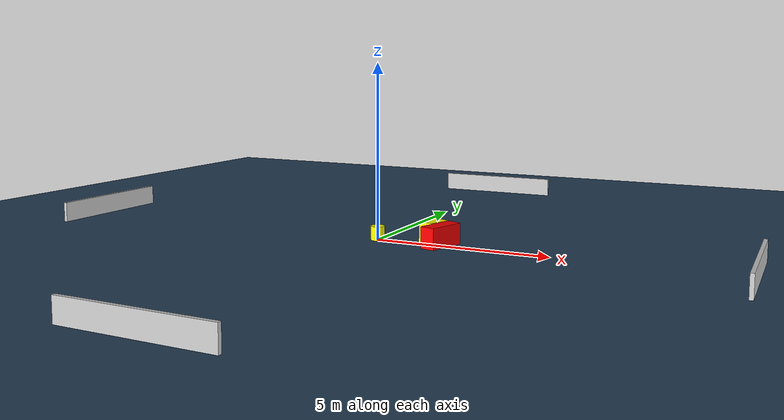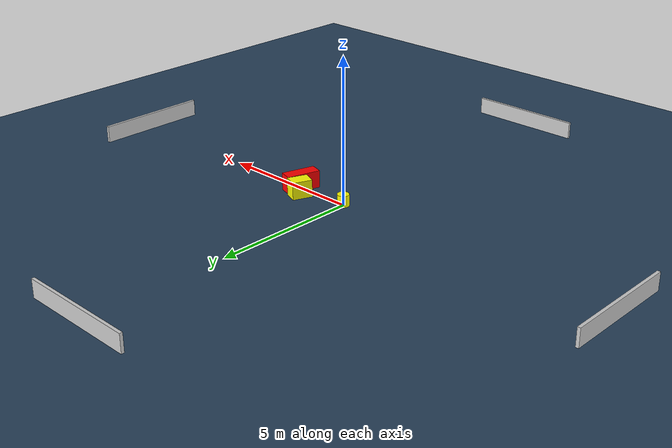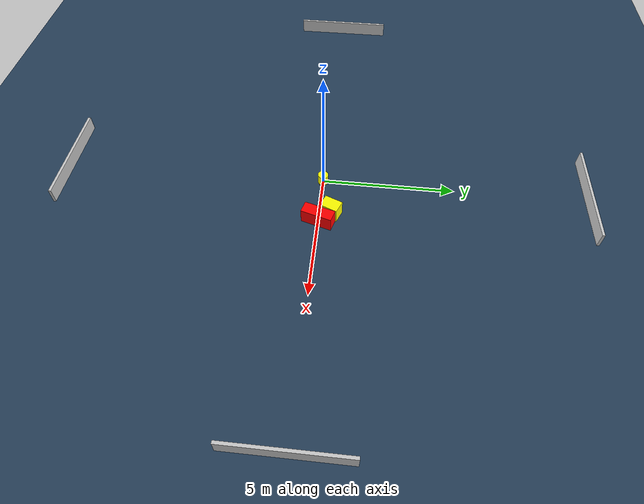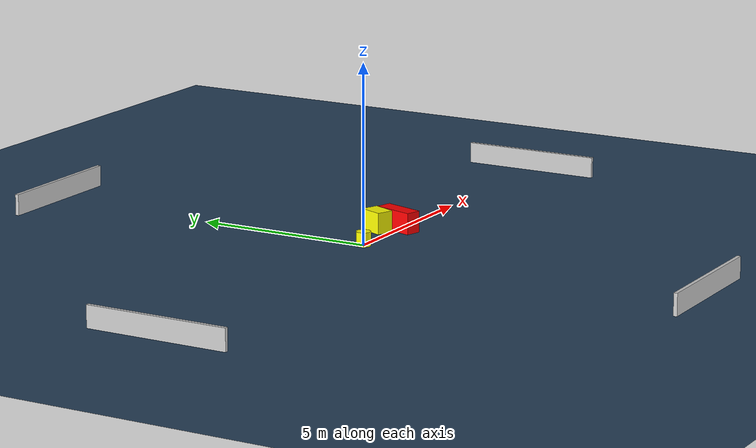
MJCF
<?xml version="1.0" ?>
<mujoco model="generated_environment">
  <option timestep="0.01" integrator="RK4" cone="elliptic"/>
  <default>
    <geom density="1"/>
  </default>
  <asset>
    <texture builtin="gradient" height="3072" name="skybox" rgb1="0.3 0.5 0.7" rgb2="0 0 0" type="skybox" width="512"/>
    <texture builtin="checker" height="300" name="groundplane" rgb1="0.2 0.3 0.4" rgb2="0.1 0.2 0.3" type="2d" width="300"/>
    <material name="groundplane" reflectance="0.2" texrepeat="5 5" texture="groundplane"/>
  </asset>
  <worldbody>
    <light dir="0 0 -1" directional="true" pos="0 0 1.5"/>
    <geom condim="3" friction="0.5 0.005 0.001" material="groundplane" name="floor" pos="0 0 0" size="0 0 0.05" type="plane"/>
    <body name="walls">
      <geom name="wall_1" condim="4" pos="-10.0 0.0 0.3" rgba="0.800000011920929 0.800000011920929 0.800000011920929 1.0" size="0.05 2.0 0.3" type="box"/>
      <geom name="wall_2" condim="4" pos="10.0 0.0 0.3" rgba="0.800000011920929 0.800000011920929 0.800000011920929 1.0" size="0.05 2.0 0.3" type="box"/>
      <geom name="wall_3" condim="4" pos="0.0 -10.0 0.3" rgba="0.800000011920929 0.800000011920929 0.800000011920929 1.0" size="2.0 0.05 0.3" type="box"/>
      <geom name="wall_4" condim="4" pos="0.0 10.0 0.3" rgba="0.800000011920929 0.800000011920929 0.800000011920929 1.0" size="2.0 0.05 0.3" type="box"/>
    </body>
    <body name="robot">
      <joint name="joint_x" type="slide" pos="0 0 0" axis="1 0 0"/>
      <joint name="joint_y" type="slide" pos="0 0 0" axis="0 1 0"/>
      <geom name="robot" type="cylinder" pos="0.0 0.0 0.2" size="0.2 0.2 0.0" mass="5.0" friction="1.0 0.005 0.0001" condim="4" rgba="1.0 1.0 0.0 1.0"/>
    </body>
    <body name="obstacle_1_movable">
      <geom name="obstacle_1_movable" condim="4" pos="1.535285111299793 0.442950177605829 0.3" euler="0 0 67.64511348896878" friction="0.0 0.005 0.001" rgba="1.0 1.0 0.0 1.0" size="0.3427821393677284 0.24330614277788426 0.3" type="box" mass="0.1"/>
      <joint type="free"/>
    </body>
    <body name="obstacle_2_static">
      <geom name="obstacle_2_static" condim="4" pos="1.9294843813571425 0.004492659594077187 0.3" euler="0 0 253.36925713135878" friction="0.0 0.005 0.001" rgba="1.0 0.0 0.0 1.0" size="0.5830797987034981 0.22101308604513525 0.3" type="box"/>
    </body>
  </worldbody>
  <actuator>
    <motor name="actuator_x" joint="joint_x" gear="1" ctrlrange="-1 1"/>
    <motor name="actuator_y" joint="joint_y" gear="1" ctrlrange="-1 1"/>
  </actuator>
</mujoco>
